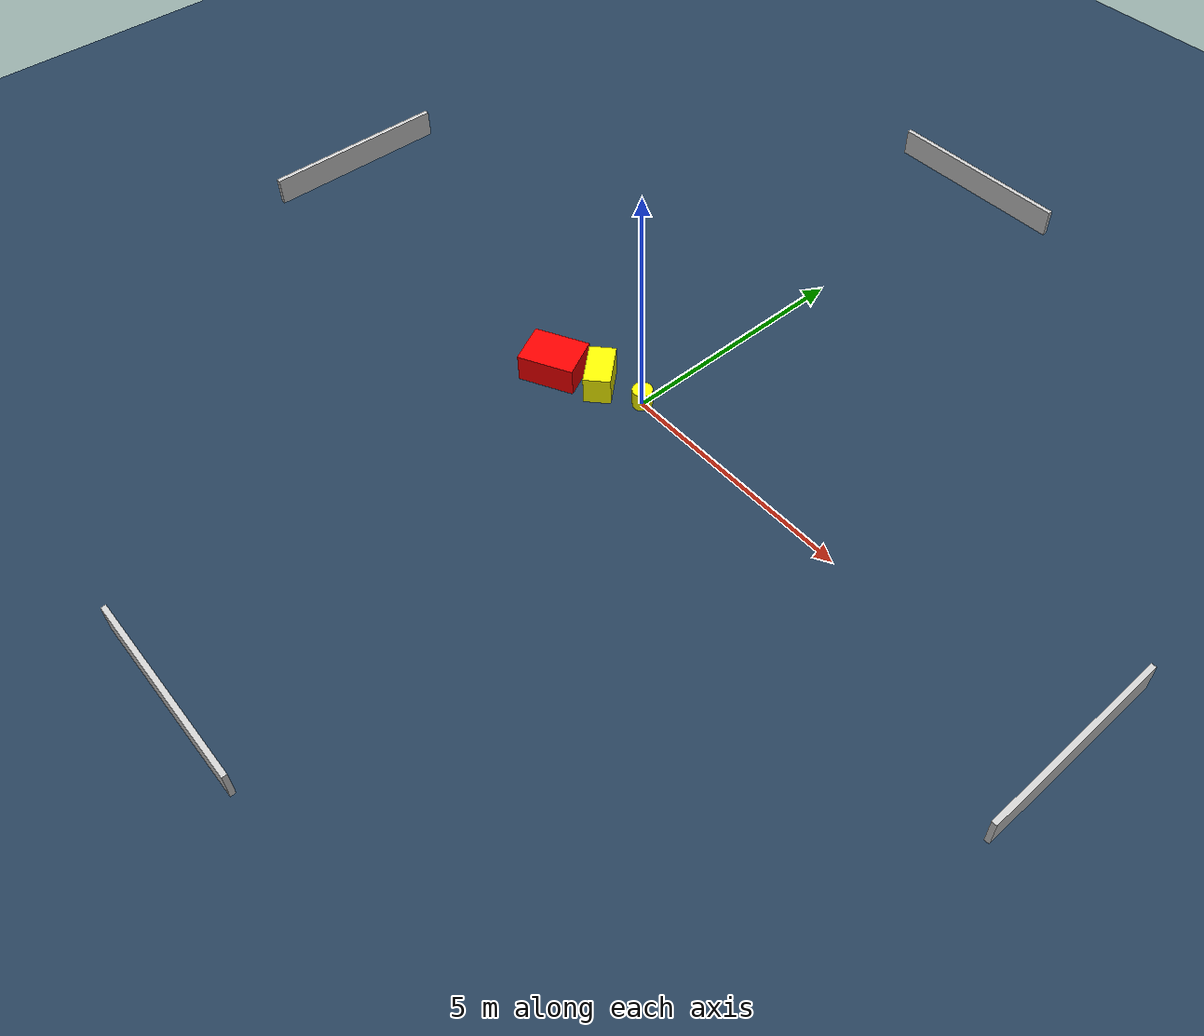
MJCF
<?xml version="1.0" ?>
<mujoco model="generated_environment">
  <option timestep="0.01" integrator="RK4" cone="elliptic"/>
  <default>
    <geom density="1"/>
  </default>
  <asset>
    <texture builtin="gradient" height="3072" name="skybox" rgb1="0.3 0.5 0.7" rgb2="0 0 0" type="skybox" width="512"/>
    <texture builtin="checker" height="300" name="groundplane" rgb1="0.2 0.3 0.4" rgb2="0.1 0.2 0.3" type="2d" width="300"/>
    <material name="groundplane" reflectance="0.2" texrepeat="5 5" texture="groundplane"/>
  </asset>
  <worldbody>
    <light dir="0 0 -1" directional="true" pos="0 0 1.5"/>
    <geom condim="3" friction="0.5 0.005 0.001" material="groundplane" name="floor" pos="0 0 0" size="0 0 0.05" type="plane"/>
    <body name="walls">
      <geom name="wall_1" condim="4" pos="-10.0 0.0 0.3" rgba="0.800000011920929 0.800000011920929 0.800000011920929 1.0" size="0.05 2.0 0.3" type="box"/>
      <geom name="wall_2" condim="4" pos="10.0 0.0 0.3" rgba="0.800000011920929 0.800000011920929 0.800000011920929 1.0" size="0.05 2.0 0.3" type="box"/>
      <geom name="wall_3" condim="4" pos="0.0 -10.0 0.3" rgba="0.800000011920929 0.800000011920929 0.800000011920929 1.0" size="2.0 0.05 0.3" type="box"/>
      <geom name="wall_4" condim="4" pos="0.0 10.0 0.3" rgba="0.800000011920929 0.800000011920929 0.800000011920929 1.0" size="2.0 0.05 0.3" type="box"/>
    </body>
    <body name="robot">
      <joint name="joint_x" type="slide" pos="0 0 0" axis="1 0 0"/>
      <joint name="joint_y" type="slide" pos="0 0 0" axis="0 1 0"/>
      <geom name="robot" type="cylinder" pos="0.0 0.0 0.2" size="0.2 0.2 0.0" mass="5.0" friction="1.0 0.005 0.0001" condim="4" rgba="1.0 1.0 0.0 1.0"/>
    </body>
    <body name="obstacle_1_movable">
      <geom name="obstacle_1_movable" condim="4" pos="-0.907603985707474 -0.29669698920463117 0.3" euler="0 0 222.27995363572833" friction="0.0 0.005 0.001" rgba="1.0 1.0 0.0 1.0" size="0.26904483813404245 0.4615128961018393 0.3" type="box" mass="0.1"/>
      <joint type="free"/>
    </body>
    <body name="obstacle_2_static">
      <geom name="obstacle_2_static" condim="4" pos="-1.7882786297540354 -0.733236226896219 0.3" euler="0 0 207.20368767324655" friction="0.0 0.005 0.001" rgba="1.0 0.0 0.0 1.0" size="0.5763264229933474 0.4284699511935388 0.3" type="box"/>
    </body>
  </worldbody>
  <actuator>
    <motor name="actuator_x" joint="joint_x" gear="1" ctrlrange="-1 1"/>
    <motor name="actuator_y" joint="joint_y" gear="1" ctrlrange="-1 1"/>
  </actuator>
</mujoco>
